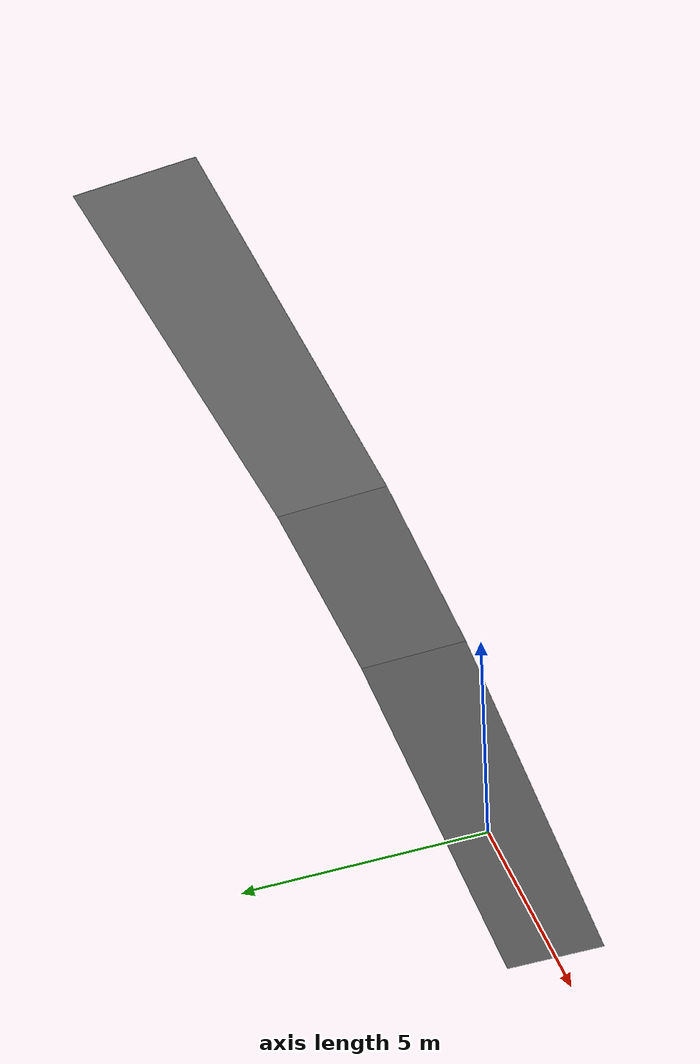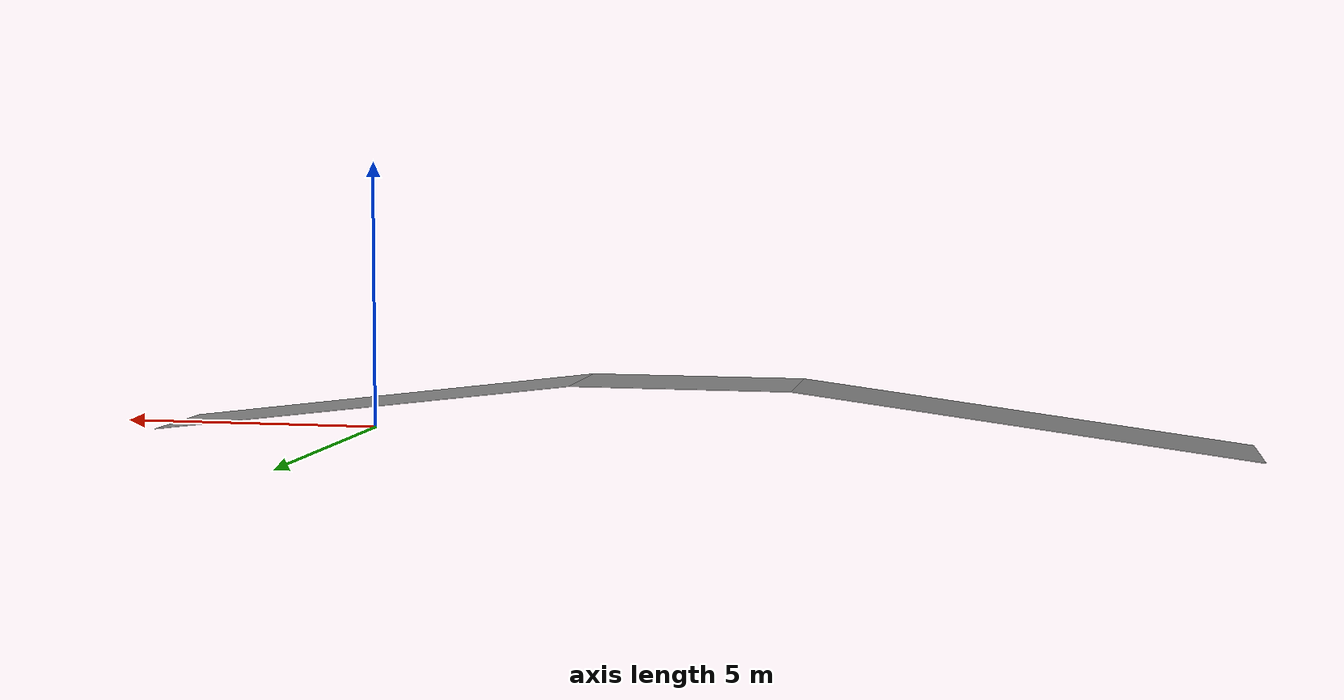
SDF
<?xml version="1.0" ?>
<sdf version="1.4">
  <model name="ramp">
    <static>1</static>
    <!-- alpha  = arctan2( 1, 8 )     = 0.12435499454676144 -->
    <!-- length = sqrt( 8**2 + 1**2 ) = 8.0622577482985491 -->
    <link name="ramp_link">
      <!-- ramp up -->
      <collision name="ramp_up_collision">
        <pose>0. 0. 0.5 0. 0.12435499454676144 0.</pose>
        <geometry>
          <box>
            <size>8.0622577482985491 2. 0.01</size>
          </box>
        </geometry>
      </collision>
      <visual name="ramp_up_visual">
        <pose>0. 0. 0.5 0. 0.12435499454676144 0.</pose>
        <geometry>
          <box>
            <size>8.0622577482985491 2. 0.01</size>
          </box>
        </geometry>
        <material>
          <script>
            <uri>file://media/materials/scripts/gazebo.material</uri>
            <name>Gazebo/Grey</name>
          </script>
        </material>
        <cast_shadows>0</cast_shadows>
      </visual>

      <!-- plane -->
      <collision name="plane_collision">
        <pose>-6. 0. 1. 0. 0. 0.</pose>
        <geometry>
          <box>
            <size>4. 2. 0.01</size>
          </box>
        </geometry>
      </collision>
      <visual name="plane_visual">
        <pose>-6. 0. 1. 0. 0. 0.</pose>
        <geometry>
          <box>
            <size>4. 2. 0.01</size>
          </box>
        </geometry>
        <material>
          <script>
            <uri>file://media/materials/scripts/gazebo.material</uri>
            <name>Gazebo/Grey</name>
          </script>
        </material>
        <cast_shadows>0</cast_shadows>
      </visual>

      <!-- ramp down -->
      <collision name="ramp_down_collision">
        <pose>-12. 0. 0.5 0. -0.12435499454676144 0.</pose>
        <geometry>
          <box>
            <size>8.0622577482985491 2. 0.01</size>
          </box>
        </geometry>
      </collision>
      <visual name="ramp_down_visual">
        <pose>-12. 0. 0.5 0. -0.12435499454676144 0.</pose>
        <geometry>
          <box>
            <size>8.0622577482985491 2. 0.01</size>
          </box>
        </geometry>
        <material>
          <script>
            <uri>file://media/materials/scripts/gazebo.material</uri>
            <name>Gazebo/Grey</name>
          </script>
        </material>
        <cast_shadows>0</cast_shadows>
      </visual>
      <velocity_decay>
        <linear>0.</linear>
        <angular>0.</angular>
      </velocity_decay>
      <self_collide>0</self_collide>
      <kinematic>0</kinematic>
      <gravity>1</gravity>
    </link>
  </model>
</sdf>
